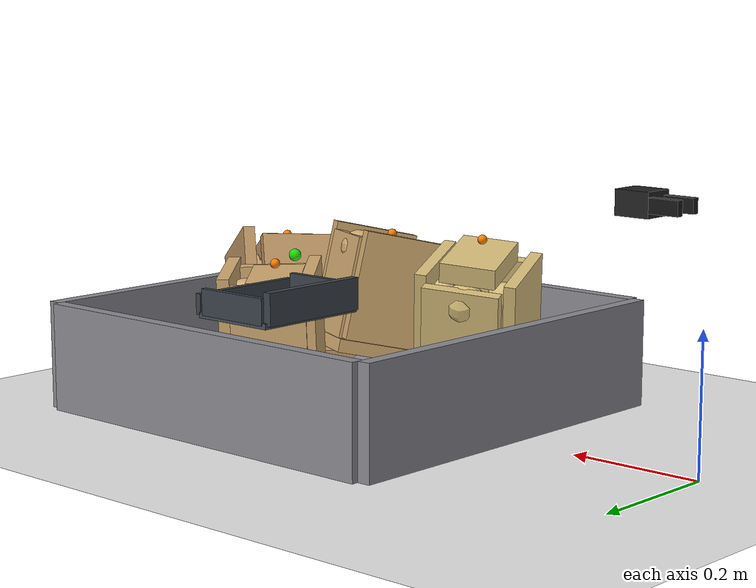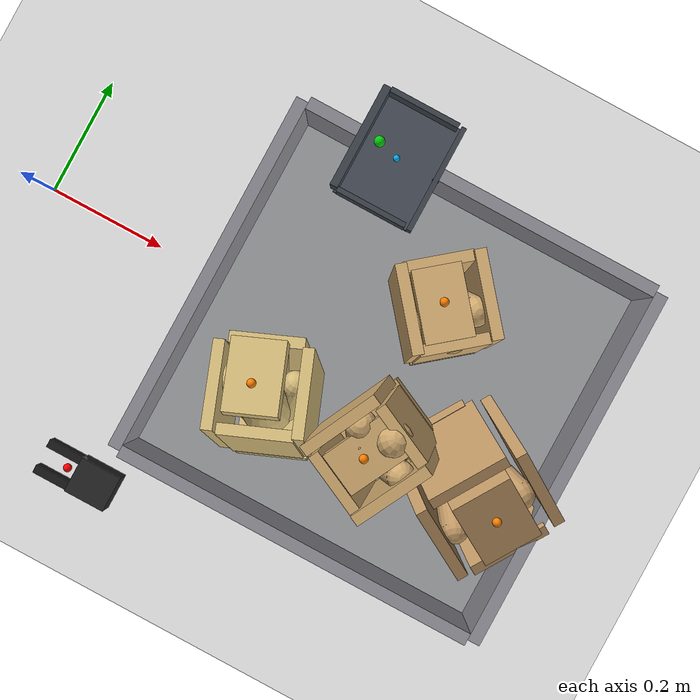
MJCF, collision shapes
<mujoco model="low_fill_top_collapsed_side_exposed_ep0_try1">
  <compiler angle="radian" coordinate="local" inertiafromgeom="true" meshdir="D:/Michael/2025/01.Research/01.Parceldetection/16.Pybullet/bullet3-master (1)/bullet3-master/examples/pybullet/examples/DeformableTest/Sackcodex2/object"/>
  <option timestep="0.002" gravity="0 0 -9.81" integrator="implicitfast" iterations="100" tolerance="1e-8"/>
  <size memory="768M" nconmax="12000"/>

  <visual>
    <global azimuth="128" elevation="-20"/>
    <headlight ambient="0.34 0.34 0.34" diffuse="0.78 0.78 0.78" specular="0.15 0.15 0.15"/>
    <rgba haze="0.11 0.13 0.18 1"/>
  </visual>

  <default>
    <geom condim="4" friction="1.15 0.03 0.01" margin="0.003" solimp="0.93 0.98 0.003" solref="0.012 1"/>
    <joint damping="1.2" armature="0.002"/>
    <position kp="2500" forcelimited="true" forcerange="-420 420"/>
    <motor ctrllimited="true"/>
  </default>

  <asset>
    <mesh name="sack_0_visual_mesh" file="sack.obj" scale="0.0692 0.0692 0.0712"/>
    <mesh name="sack_1_visual_mesh" file="sack.obj" scale="0.0675 0.0675 0.0680"/>
    <mesh name="sack_2_visual_mesh" file="sack3.obj" scale="0.0746 0.0746 0.0799"/>
    <mesh name="sack_3_visual_mesh" file="sack7.obj" scale="0.0686 0.0686 0.0757"/>
  </asset>

  <worldbody>
    <light name="key" pos="0.85 0.15 1.8" dir="-0.2 -0.1 -1" directional="true"/>
    <geom name="floor" type="plane" size="2 2 0.1" rgba="0.93 0.93 0.93 1"/>
    <geom name="work_pad" type="box" pos="0.62 0 0.012" size="0.30 0.30 0.012" rgba="0.60 0.61 0.62 1" friction="1.4 0.05 0.01"/>
    <geom name="corral_front" type="box" pos="0.93 0.00 0.08" size="0.010 0.30 0.08" rgba="0.55 0.55 0.58 0.22" friction="1.0 0.03 0.01"/>
    <geom name="corral_back" type="box" pos="0.31 0.00 0.08" size="0.010 0.30 0.08" rgba="0.55 0.55 0.58 0.18" friction="1.0 0.03 0.01"/>
    <geom name="corral_left" type="box" pos="0.62 0.30 0.08" size="0.30 0.010 0.08" rgba="0.55 0.55 0.58 0.14" friction="1.0 0.03 0.01"/>
    <geom name="corral_right" type="box" pos="0.62 -0.30 0.08" size="0.30 0.010 0.08" rgba="0.55 0.55 0.58 0.14" friction="1.0 0.03 0.01"/>
    <camera name="overview" pos="1.22 0.00 0.92" xyaxes="0 1 0 -0.46 0 0.88"/>

    <body name="gripper_mocap" mocap="true" pos="0.36 -0.33 0.30" quat="0.707107 0 -0.707107 0"/>
    <body name="scoop_mocap" mocap="true" pos="0.42 0.28 0.20" quat="1 0 0 0"/>

    <body name="gripper_ctrl_base" pos="0.36 -0.33 0.30">
      <inertial pos="0 0 0" mass="0.001" diaginertia="1e-6 1e-6 1e-6"/>
      <joint name="gripper_ctrl_x" type="slide" axis="1 0 0" limited="true" range="0.20 1.00"/>
      <body name="gripper_ctrl_y_body">
        <inertial pos="0 0 0" mass="0.001" diaginertia="1e-6 1e-6 1e-6"/>
        <joint name="gripper_ctrl_y" type="slide" axis="0 1 0" limited="true" range="-0.60 0.60"/>
        <body name="gripper_ctrl_z_body">
          <inertial pos="0 0 0" mass="0.001" diaginertia="1e-6 1e-6 1e-6"/>
          <joint name="gripper_ctrl_z" type="slide" axis="0 0 1" limited="true" range="0.04 0.70"/>
          <body name="gripper_ctrl_yaw_body">
            <inertial pos="0 0 0" mass="0.001" diaginertia="1e-6 1e-6 1e-6"/>
            <joint name="gripper_ctrl_yaw" type="hinge" axis="0 0 1" limited="true" range="-3.1416 3.1416"/>
            <body name="gripper_ctrl_pitch_body">
              <inertial pos="0 0 0" mass="0.001" diaginertia="1e-6 1e-6 1e-6"/>
              <joint name="gripper_ctrl_pitch" type="hinge" axis="0 1 0" limited="true" range="-3.1416 3.1416"/>
              <body name="gripper_ctrl_roll_body">
                <inertial pos="0 0 0" mass="0.001" diaginertia="1e-6 1e-6 1e-6"/>
                <joint name="gripper_ctrl_roll" type="hinge" axis="1 0 0" limited="true" range="-3.1416 3.1416"/>
              </body>
            </body>
          </body>
        </body>
      </body>
    </body>

    <body name="scoop_ctrl_base" pos="0.42 0.28 0.20">
      <inertial pos="0 0 0" mass="0.001" diaginertia="1e-6 1e-6 1e-6"/>
      <joint name="scoop_ctrl_x" type="slide" axis="1 0 0" limited="true" range="0.20 1.00"/>
      <body name="scoop_ctrl_y_body">
        <inertial pos="0 0 0" mass="0.001" diaginertia="1e-6 1e-6 1e-6"/>
        <joint name="scoop_ctrl_y" type="slide" axis="0 1 0" limited="true" range="-0.60 0.60"/>
        <body name="scoop_ctrl_z_body">
          <inertial pos="0 0 0" mass="0.001" diaginertia="1e-6 1e-6 1e-6"/>
          <joint name="scoop_ctrl_z" type="slide" axis="0 0 1" limited="true" range="0.04 0.70"/>
          <body name="scoop_ctrl_yaw_body">
            <inertial pos="0 0 0" mass="0.001" diaginertia="1e-6 1e-6 1e-6"/>
            <joint name="scoop_ctrl_yaw" type="hinge" axis="0 0 1" limited="true" range="-3.1416 3.1416"/>
            <body name="scoop_ctrl_pitch_body">
              <inertial pos="0 0 0" mass="0.001" diaginertia="1e-6 1e-6 1e-6"/>
              <joint name="scoop_ctrl_pitch" type="hinge" axis="0 1 0" limited="true" range="-3.1416 3.1416"/>
              <body name="scoop_ctrl_roll_body">
                <inertial pos="0 0 0" mass="0.001" diaginertia="1e-6 1e-6 1e-6"/>
                <joint name="scoop_ctrl_roll" type="hinge" axis="1 0 0" limited="true" range="-3.1416 3.1416"/>
              </body>
            </body>
          </body>
        </body>
      </body>
    </body>

    <body name="gripper_tool" pos="0.36 -0.33 0.30" quat="0.707107 0 -0.707107 0">
      <freejoint name="gripper_tool_free"/>
      <inertial pos="0 0 0.04" mass="0.08" diaginertia="0.0002 0.0002 0.0002"/>
      <geom name="gripper_palm" type="box" pos="0 0 0.030" size="0.020 0.026 0.030" rgba="0.14 0.14 0.14 1"/>
      <body name="left_finger_body" pos="0 0 0.072">
        <joint name="left_finger_slide" type="slide" axis="0 1 0" limited="true" range="0.010 0.040" damping="12"/>
        <geom name="left_finger_geom" type="box" pos="0 0.020 0" size="0.012 0.006 0.040" rgba="0.10 0.10 0.10 1" friction="2.2 0.05 0.01"/>
      </body>
      <body name="right_finger_body" pos="0 0 0.072">
        <joint name="right_finger_slide" type="slide" axis="0 -1 0" limited="true" range="0.010 0.040" damping="12"/>
        <geom name="right_finger_geom" type="box" pos="0 -0.020 0" size="0.012 0.006 0.040" rgba="0.10 0.10 0.10 1" friction="2.2 0.05 0.01"/>
      </body>
      <site name="gripper_pinch_site" pos="0 0 0.074" size="0.006" rgba="1 0 0 1"/>
    </body>

    <body name="scoop_tool" pos="0.42 0.28 0.20" quat="1 0 0 0">
      <freejoint name="scoop_tool_free"/>
      <inertial pos="0 0 0.02" mass="0.10" diaginertia="0.0003 0.0003 0.0003"/>
      <geom name="scoop_plate" type="box" pos="0.062 0 0" size="0.062 0.085 0.004" rgba="0.28 0.31 0.35 1" friction="1.7 0.05 0.01"/>
      <geom name="scoop_lip" type="box" pos="0.126 0 0.014" size="0.004 0.085 0.014" rgba="0.24 0.27 0.30 1" friction="1.7 0.05 0.01"/>
      <geom name="scoop_left_rail" type="box" pos="0.062 0.082 0.018" size="0.056 0.004 0.018" rgba="0.24 0.27 0.30 1"/>
      <geom name="scoop_right_rail" type="box" pos="0.062 -0.082 0.018" size="0.056 0.004 0.018" rgba="0.24 0.27 0.30 1"/>
      <geom name="scoop_backstop" type="box" pos="0.000 0 0.022" size="0.006 0.082 0.022" rgba="0.24 0.27 0.30 1"/>
      <site name="scoop_tip_site" pos="0.126 0 0.005" size="0.005" rgba="0 0 1 1"/>
      <site name="scoop_center_site" pos="0.060 0 0.020" size="0.005" rgba="0 0.7 1 1"/>
      <site name="score_overlay_site" pos="0.030 0 0.080" size="0.008" rgba="0 1 0 0.8"/>
    </body>

    <body name="sack_0" pos="0.6486 0.1237 0.1194" euler="-0.0752 -0.0223 -0.8880">
      <freejoint name="sack_0_free"/>

      <geom name="sack_0_visual" type="mesh" mesh="sack_0_visual_mesh" rgba="0.820 0.670 0.440 0.92" contype="0" conaffinity="0"/>
      <site name="sack_0_center_site" pos="0 0 0.000" size="0.006" rgba="0 1 0 1"/>
      <site name="sack_0_top_site" pos="0 -0.0060 0.1095" size="0.007" rgba="1 0.5 0 1"/>
      <site name="sack_0_side_site" pos="0.0000 -0.0479 0.018" size="0.007" rgba="1 0.8 0 1"/>

      <geom name="sack_0_core_geom" type="ellipsoid" pos="0 0 0.0057" size="0.0451 0.0350 0.0669" mass="0.6702" rgba="0.820 0.670 0.440 0.12" friction="1.0 0.03 0.01"/>
      <geom name="sack_0_core_front" type="capsule" fromto="-0.0200 0 -0.0200 0.0450 0 0.0600" size="0.0296" mass="0.1596" rgba="0.820 0.670 0.440 0.10"/>
      <geom name="sack_0_core_left" type="capsule" fromto="-0.008 0.0236 -0.010 0.018 0.0416 0.060" size="0.0240" mass="0.2872" rgba="0.820 0.670 0.440 0.10"/>
      <geom name="sack_0_core_right" type="capsule" fromto="-0.006 -0.0236 -0.008 0.020 -0.0436 0.054" size="0.0220" mass="0.2872" rgba="0.820 0.670 0.440 0.10"/>

      <body name="sack_0_bottom_support_proxy_body" pos="0 -0.0031 -0.0960">
        <joint name="sack_0_bottom_x" type="slide" axis="1 0 0" limited="true" range="-0.012 0.012" damping="18" stiffness="448.8"/>
        <joint name="sack_0_bottom_y" type="slide" axis="0 1 0" limited="true" range="-0.012 0.012" damping="18" stiffness="448.8"/>
        <joint name="sack_0_bottom_z" type="slide" axis="0 0 1" limited="true" range="-0.008 0.020" damping="24" stiffness="553.0"/>
        <geom name="sack_0_bottom_support_proxy" type="box" size="0.0726 0.0539 0.0100" mass="0.1276" rgba="0.820 0.670 0.440 0.34" friction="1.55 0.05 0.01"/>
      </body>

      <body name="sack_0_top_grasp_proxy_body" pos="0.0000 -0.0060 0.0795">
        <joint name="sack_0_top_x" type="slide" axis="1 0 0" limited="true" range="-0.018 0.018" damping="12" stiffness="172.3"/>
        <joint name="sack_0_top_y" type="slide" axis="0 1 0" limited="true" range="-0.018 0.018" damping="12" stiffness="172.3"/>
        <joint name="sack_0_top_z" type="slide" axis="0 0 1" limited="true" range="-0.040 0.010" damping="14" stiffness="126.3"/>
        <geom name="sack_0_top_grasp_proxy" type="box" size="0.0566 0.0379 0.0150" mass="0.0957" rgba="0.820 0.670 0.440 0.26" friction="2.2 0.05 0.01"/>
      </body>

      <body name="sack_0_left_side_proxy_body" pos="0 0.0615 0.010">
        <joint name="sack_0_left_side_slide" type="slide" axis="0 -1 0" limited="true" range="-0.028 0.016" damping="16" stiffness="221.6"/>
        <geom name="sack_0_left_side_proxy" type="box" size="0.0686 0.0090 0.0940" mass="0.0957" rgba="0.820 0.670 0.440 0.24"/>
      </body>

      <body name="sack_0_right_side_proxy_body" pos="0 -0.0575 0.010">
        <joint name="sack_0_right_side_slide" type="slide" axis="0 1 0" limited="true" range="-0.028 0.016" damping="16" stiffness="205.6"/>
        <geom name="sack_0_right_side_proxy" type="box" size="0.0686 0.0090 0.0940" mass="0.0957" rgba="0.820 0.670 0.440 0.24"/>
      </body>

      <body name="sack_0_front_proxy_body" pos="0.0626 0 0.000">
        <joint name="sack_0_front_slide" type="slide" axis="-1 0 0" limited="true" range="-0.022 0.012" damping="15" stiffness="214.4"/>
        <geom name="sack_0_front_support_proxy" type="box" size="0.0090 0.0539 0.0920" mass="0.0798" rgba="0.820 0.670 0.440 0.22"/>
      </body>

      <body name="sack_0_back_proxy_body" pos="-0.0626 0 0.000">
        <joint name="sack_0_back_slide" type="slide" axis="1 0 0" limited="true" range="-0.022 0.012" damping="15" stiffness="198.4"/>
        <geom name="sack_0_back_support_proxy" type="box" size="0.0090 0.0539 0.0920" mass="0.0798" rgba="0.820 0.670 0.440 0.22"/>
      </body>

      <body name="sack_0_shape_proxy_body" pos="0.0000 -0.0156 0.0437">
        <joint name="sack_0_bulge_y" type="slide" axis="0 1 0" limited="true" range="-0.020 0.020" damping="8" stiffness="107.4"/>
        <joint name="sack_0_bulge_z" type="slide" axis="0 0 1" limited="true" range="-0.014 0.028" damping="8" stiffness="105.6"/>
        <geom name="sack_0_shape_proxy" type="ellipsoid" size="0.0200 0.0161 0.0262" mass="0.0638" rgba="0.820 0.670 0.440 0.28"/>
      </body>
    </body>

    <body name="sack_1" pos="0.6593 -0.1107 0.1538" euler="0.2104 -0.0844 1.1319">
      <freejoint name="sack_1_free"/>

      <geom name="sack_1_visual" type="mesh" mesh="sack_1_visual_mesh" rgba="0.820 0.670 0.440 0.92" contype="0" conaffinity="0"/>
      <site name="sack_1_center_site" pos="0 0 0.000" size="0.006" rgba="0 1 0 1"/>
      <site name="sack_1_top_site" pos="0 0.0060 0.0920" size="0.007" rgba="1 0.5 0 1"/>
      <site name="sack_1_side_site" pos="0.0000 0.0462 0.018" size="0.007" rgba="1 0.8 0 1"/>

      <geom name="sack_1_core_geom" type="ellipsoid" pos="0 0 0.0057" size="0.0445 0.0342 0.0657" mass="0.6786" rgba="0.820 0.670 0.440 0.12" friction="1.0 0.03 0.01"/>
      <geom name="sack_1_core_front" type="capsule" fromto="-0.0200 0 -0.0200 0.0450 0 0.0600" size="0.0289" mass="0.1616" rgba="0.820 0.670 0.440 0.10"/>
      <geom name="sack_1_core_left" type="capsule" fromto="-0.008 0.0287 -0.010 0.018 0.0467 0.060" size="0.0241" mass="0.2908" rgba="0.820 0.670 0.440 0.10"/>
      <geom name="sack_1_core_right" type="capsule" fromto="-0.006 -0.0287 -0.008 0.020 -0.0487 0.054" size="0.0221" mass="0.2908" rgba="0.820 0.670 0.440 0.10"/>

      <body name="sack_1_bottom_support_proxy_body" pos="0 0.0102 -0.0843">
        <joint name="sack_1_bottom_x" type="slide" axis="1 0 0" limited="true" range="-0.012 0.012" damping="18" stiffness="426.7"/>
        <joint name="sack_1_bottom_y" type="slide" axis="0 1 0" limited="true" range="-0.012 0.012" damping="18" stiffness="426.7"/>
        <joint name="sack_1_bottom_z" type="slide" axis="0 0 1" limited="true" range="-0.008 0.020" damping="24" stiffness="526.0"/>
        <geom name="sack_1_bottom_support_proxy" type="box" size="0.0719 0.0522 0.0100" mass="0.1293" rgba="0.820 0.670 0.440 0.34" friction="1.55 0.05 0.01"/>
      </body>

      <body name="sack_1_top_grasp_proxy_body" pos="0.0000 0.0060 0.0620">
        <joint name="sack_1_top_x" type="slide" axis="1 0 0" limited="true" range="-0.018 0.018" damping="12" stiffness="163.7"/>
        <joint name="sack_1_top_y" type="slide" axis="0 1 0" limited="true" range="-0.018 0.018" damping="12" stiffness="163.7"/>
        <joint name="sack_1_top_z" type="slide" axis="0 0 1" limited="true" range="-0.040 0.010" damping="14" stiffness="118.9"/>
        <geom name="sack_1_top_grasp_proxy" type="box" size="0.0559 0.0362 0.0150" mass="0.0969" rgba="0.820 0.670 0.440 0.26" friction="2.2 0.05 0.01"/>
      </body>

      <body name="sack_1_left_side_proxy_body" pos="0 0.0649 0.010">
        <joint name="sack_1_left_side_slide" type="slide" axis="0 -1 0" limited="true" range="-0.028 0.016" damping="16" stiffness="206.7"/>
        <geom name="sack_1_left_side_proxy" type="box" size="0.0679 0.0090 0.0823" mass="0.0969" rgba="0.820 0.670 0.440 0.24"/>
      </body>

      <body name="sack_1_right_side_proxy_body" pos="0 -0.0609 0.010">
        <joint name="sack_1_right_side_slide" type="slide" axis="0 1 0" limited="true" range="-0.028 0.016" damping="16" stiffness="191.9"/>
        <geom name="sack_1_right_side_proxy" type="box" size="0.0679 0.0090 0.0823" mass="0.0969" rgba="0.820 0.670 0.440 0.24"/>
      </body>

      <body name="sack_1_front_proxy_body" pos="0.0619 0 0.000">
        <joint name="sack_1_front_slide" type="slide" axis="-1 0 0" limited="true" range="-0.022 0.012" damping="15" stiffness="203.4"/>
        <geom name="sack_1_front_support_proxy" type="box" size="0.0090 0.0522 0.0803" mass="0.0808" rgba="0.820 0.670 0.440 0.22"/>
      </body>

      <body name="sack_1_back_proxy_body" pos="-0.0619 0 0.000">
        <joint name="sack_1_back_slide" type="slide" axis="1 0 0" limited="true" range="-0.022 0.012" damping="15" stiffness="188.5"/>
        <geom name="sack_1_back_support_proxy" type="box" size="0.0090 0.0522 0.0803" mass="0.0808" rgba="0.820 0.670 0.440 0.22"/>
      </body>

      <body name="sack_1_shape_proxy_body" pos="0.0000 0.0207 0.0511">
        <joint name="sack_1_bulge_y" type="slide" axis="0 1 0" limited="true" range="-0.020 0.020" damping="8" stiffness="122.2"/>
        <joint name="sack_1_bulge_z" type="slide" axis="0 0 1" limited="true" range="-0.014 0.028" damping="8" stiffness="116.6"/>
        <geom name="sack_1_shape_proxy" type="ellipsoid" size="0.0201 0.0162 0.0263" mass="0.0646" rgba="0.820 0.670 0.440 0.28"/>
      </body>
    </body>

    <body name="sack_2" pos="0.8177 -0.0904 0.1207" euler="0.3136 0.3788 -0.5989">
      <freejoint name="sack_2_free"/>

      <geom name="sack_2_visual" type="mesh" mesh="sack_2_visual_mesh" rgba="0.760 0.600 0.400 0.92" contype="0" conaffinity="0"/>
      <site name="sack_2_center_site" pos="0 0 0.000" size="0.006" rgba="0 1 0 1"/>
      <site name="sack_2_top_site" pos="0 0.0060 0.1132" size="0.007" rgba="1 0.5 0 1"/>
      <site name="sack_2_side_site" pos="0.0140 0.0586 0.018" size="0.007" rgba="1 0.8 0 1"/>

      <geom name="sack_2_core_geom" type="ellipsoid" pos="0 0 0.0058" size="0.0452 0.0356 0.0797" mass="0.9569" rgba="0.760 0.600 0.400 0.12" friction="1.0 0.03 0.01"/>
      <geom name="sack_2_core_front" type="capsule" fromto="-0.0060 0 -0.0200 0.0590 0 0.0600" size="0.0310" mass="0.2278" rgba="0.760 0.600 0.400 0.10"/>
      <geom name="sack_2_core_left" type="capsule" fromto="-0.008 0.0363 -0.010 0.018 0.0543 0.060" size="0.0242" mass="0.4101" rgba="0.760 0.600 0.400 0.10"/>
      <geom name="sack_2_core_right" type="capsule" fromto="-0.006 -0.0363 -0.008 0.020 -0.0563 0.054" size="0.0222" mass="0.4101" rgba="0.760 0.600 0.400 0.10"/>

      <body name="sack_2_bottom_support_proxy_body" pos="0 -0.0133 -0.0915">
        <joint name="sack_2_bottom_x" type="slide" axis="1 0 0" limited="true" range="-0.012 0.012" damping="18" stiffness="490.5"/>
        <joint name="sack_2_bottom_y" type="slide" axis="0 1 0" limited="true" range="-0.012 0.012" damping="18" stiffness="490.5"/>
        <joint name="sack_2_bottom_z" type="slide" axis="0 0 1" limited="true" range="-0.008 0.020" damping="24" stiffness="604.0"/>
        <geom name="sack_2_bottom_support_proxy" type="box" size="0.0760 0.0646 0.0100" mass="0.1823" rgba="0.760 0.600 0.400 0.34" friction="1.55 0.05 0.01"/>
      </body>

      <body name="sack_2_top_grasp_proxy_body" pos="0.0140 0.0060 0.0832">
        <joint name="sack_2_top_x" type="slide" axis="1 0 0" limited="true" range="-0.018 0.018" damping="12" stiffness="188.5"/>
        <joint name="sack_2_top_y" type="slide" axis="0 1 0" limited="true" range="-0.018 0.018" damping="12" stiffness="188.5"/>
        <joint name="sack_2_top_z" type="slide" axis="0 0 1" limited="true" range="-0.040 0.010" damping="14" stiffness="140.2"/>
        <geom name="sack_2_top_grasp_proxy" type="box" size="0.0600 0.0486 0.0150" mass="0.1367" rgba="0.760 0.600 0.400 0.26" friction="2.2 0.05 0.01"/>
      </body>

      <body name="sack_2_left_side_proxy_body" pos="0 0.0850 0.010">
        <joint name="sack_2_left_side_slide" type="slide" axis="0 -1 0" limited="true" range="-0.028 0.016" damping="16" stiffness="249.8"/>
        <geom name="sack_2_left_side_proxy" type="box" size="0.0720 0.0090 0.0895" mass="0.1367" rgba="0.760 0.600 0.400 0.24"/>
      </body>

      <body name="sack_2_right_side_proxy_body" pos="0 -0.0810 0.010">
        <joint name="sack_2_right_side_slide" type="slide" axis="0 1 0" limited="true" range="-0.028 0.016" damping="16" stiffness="231.4"/>
        <geom name="sack_2_right_side_proxy" type="box" size="0.0720 0.0090 0.0895" mass="0.1367" rgba="0.760 0.600 0.400 0.24"/>
      </body>

      <body name="sack_2_front_proxy_body" pos="0.0800 0 0.000">
        <joint name="sack_2_front_slide" type="slide" axis="-1 0 0" limited="true" range="-0.022 0.012" damping="15" stiffness="235.3"/>
        <geom name="sack_2_front_support_proxy" type="box" size="0.0090 0.0646 0.0875" mass="0.1139" rgba="0.760 0.600 0.400 0.22"/>
      </body>

      <body name="sack_2_back_proxy_body" pos="-0.0660 0 0.000">
        <joint name="sack_2_back_slide" type="slide" axis="1 0 0" limited="true" range="-0.022 0.012" damping="15" stiffness="216.9"/>
        <geom name="sack_2_back_support_proxy" type="box" size="0.0090 0.0646 0.0875" mass="0.1139" rgba="0.760 0.600 0.400 0.22"/>
      </body>

      <body name="sack_2_shape_proxy_body" pos="0.0084 0.0283 0.0298">
        <joint name="sack_2_bulge_y" type="slide" axis="0 1 0" limited="true" range="-0.020 0.020" damping="8" stiffness="79.6"/>
        <joint name="sack_2_bulge_z" type="slide" axis="0 0 1" limited="true" range="-0.014 0.028" damping="8" stiffness="84.7"/>
        <geom name="sack_2_shape_proxy" type="ellipsoid" size="0.0202 0.0163 0.0261" mass="0.0911" rgba="0.760 0.600 0.400 0.28"/>
      </body>
    </body>

    <body name="sack_3" pos="0.4799 -0.1297 0.1209" euler="-0.1775 -0.1585 1.9431">
      <freejoint name="sack_3_free"/>

      <geom name="sack_3_visual" type="mesh" mesh="sack_3_visual_mesh" rgba="0.840 0.740 0.480 0.92" contype="0" conaffinity="0"/>
      <site name="sack_3_center_site" pos="0 0 0.000" size="0.006" rgba="0 1 0 1"/>
      <site name="sack_3_top_site" pos="0 0.0060 0.1398" size="0.007" rgba="1 0.5 0 1"/>
      <site name="sack_3_side_site" pos="0.0140 0.0519 0.018" size="0.007" rgba="1 0.8 0 1"/>

      <geom name="sack_3_core_geom" type="ellipsoid" pos="0 0 0.0059" size="0.0511 0.0434 0.0915" mass="1.0038" rgba="0.840 0.740 0.480 0.12" friction="1.0 0.03 0.01"/>
      <geom name="sack_3_core_front" type="capsule" fromto="-0.0060 0 -0.0200 0.0590 0 0.0600" size="0.0321" mass="0.2390" rgba="0.840 0.740 0.480 0.10"/>
      <geom name="sack_3_core_left" type="capsule" fromto="-0.008 0.0274 -0.010 0.018 0.0454 0.060" size="0.0241" mass="0.4302" rgba="0.840 0.740 0.480 0.10"/>
      <geom name="sack_3_core_right" type="capsule" fromto="-0.006 -0.0274 -0.008 0.020 -0.0474 0.054" size="0.0221" mass="0.4302" rgba="0.840 0.740 0.480 0.10"/>

      <body name="sack_3_bottom_support_proxy_body" pos="0 -0.0040 -0.0932">
        <joint name="sack_3_bottom_x" type="slide" axis="1 0 0" limited="true" range="-0.012 0.012" damping="18" stiffness="524.2"/>
        <joint name="sack_3_bottom_y" type="slide" axis="0 1 0" limited="true" range="-0.012 0.012" damping="18" stiffness="524.2"/>
        <joint name="sack_3_bottom_z" type="slide" axis="0 0 1" limited="true" range="-0.008 0.020" damping="24" stiffness="645.2"/>
        <geom name="sack_3_bottom_support_proxy" type="box" size="0.0729 0.0579 0.0100" mass="0.1912" rgba="0.840 0.740 0.480 0.34" friction="1.55 0.05 0.01"/>
      </body>

      <body name="sack_3_top_grasp_proxy_body" pos="0.0140 0.0060 0.1098">
        <joint name="sack_3_top_x" type="slide" axis="1 0 0" limited="true" range="-0.018 0.018" damping="12" stiffness="201.6"/>
        <joint name="sack_3_top_y" type="slide" axis="0 1 0" limited="true" range="-0.018 0.018" damping="12" stiffness="201.6"/>
        <joint name="sack_3_top_z" type="slide" axis="0 0 1" limited="true" range="-0.040 0.010" damping="14" stiffness="151.4"/>
        <geom name="sack_3_top_grasp_proxy" type="box" size="0.0569 0.0419 0.0150" mass="0.1434" rgba="0.840 0.740 0.480 0.26" friction="2.2 0.05 0.01"/>
      </body>

      <body name="sack_3_left_side_proxy_body" pos="0 0.0693 0.010">
        <joint name="sack_3_left_side_slide" type="slide" axis="0 -1 0" limited="true" range="-0.028 0.016" damping="16" stiffness="272.6"/>
        <geom name="sack_3_left_side_proxy" type="box" size="0.0689 0.0090 0.0912" mass="0.1434" rgba="0.840 0.740 0.480 0.24"/>
      </body>

      <body name="sack_3_right_side_proxy_body" pos="0 -0.0653 0.010">
        <joint name="sack_3_right_side_slide" type="slide" axis="0 1 0" limited="true" range="-0.028 0.016" damping="16" stiffness="252.3"/>
        <geom name="sack_3_right_side_proxy" type="box" size="0.0689 0.0090 0.0912" mass="0.1434" rgba="0.840 0.740 0.480 0.24"/>
      </body>

      <body name="sack_3_front_proxy_body" pos="0.0769 0 0.000">
        <joint name="sack_3_front_slide" type="slide" axis="-1 0 0" limited="true" range="-0.022 0.012" damping="15" stiffness="252.1"/>
        <geom name="sack_3_front_support_proxy" type="box" size="0.0090 0.0579 0.0892" mass="0.1195" rgba="0.840 0.740 0.480 0.22"/>
      </body>

      <body name="sack_3_back_proxy_body" pos="-0.0629 0 0.000">
        <joint name="sack_3_back_slide" type="slide" axis="1 0 0" limited="true" range="-0.022 0.012" damping="15" stiffness="231.9"/>
        <geom name="sack_3_back_support_proxy" type="box" size="0.0090 0.0579 0.0892" mass="0.1195" rgba="0.840 0.740 0.480 0.22"/>
      </body>

      <body name="sack_3_shape_proxy_body" pos="0.0084 0.0194 0.0186">
        <joint name="sack_3_bulge_y" type="slide" axis="0 1 0" limited="true" range="-0.020 0.020" damping="8" stiffness="60.0"/>
        <joint name="sack_3_bulge_z" type="slide" axis="0 0 1" limited="true" range="-0.014 0.028" damping="8" stiffness="70.0"/>
        <geom name="sack_3_shape_proxy" type="ellipsoid" size="0.0201 0.0161 0.0261" mass="0.0956" rgba="0.840 0.740 0.480 0.28"/>
      </body>
    </body>
  </worldbody>

  <equality>
    <weld name="gripper_follow" body1="gripper_mocap" body2="gripper_tool" torquescale="400" solref="0.002 1" solimp="0.99 0.999 0.0001"/>
    <weld name="scoop_follow" body1="scoop_mocap" body2="scoop_tool" torquescale="500" solref="0.002 1" solimp="0.99 0.999 0.0001"/>
  </equality>

  <actuator>
    <position name="gripper_ctrl_x_act" joint="gripper_ctrl_x" ctrlrange="0.20 1.00" kp="3500" forcerange="-300 300"/>
    <position name="gripper_ctrl_y_act" joint="gripper_ctrl_y" ctrlrange="-0.60 0.60" kp="3500" forcerange="-300 300"/>
    <position name="gripper_ctrl_z_act" joint="gripper_ctrl_z" ctrlrange="0.04 0.70" kp="3500" forcerange="-300 300"/>
    <position name="gripper_ctrl_yaw_act" joint="gripper_ctrl_yaw" ctrlrange="-3.1416 3.1416" kp="1800" forcerange="-250 250"/>
    <position name="gripper_ctrl_pitch_act" joint="gripper_ctrl_pitch" ctrlrange="-3.1416 3.1416" kp="1800" forcerange="-250 250"/>
    <position name="gripper_ctrl_roll_act" joint="gripper_ctrl_roll" ctrlrange="-3.1416 3.1416" kp="1800" forcerange="-250 250"/>
    <position name="scoop_ctrl_x_act" joint="scoop_ctrl_x" ctrlrange="0.20 1.00" kp="3500" forcerange="-300 300"/>
    <position name="scoop_ctrl_y_act" joint="scoop_ctrl_y" ctrlrange="-0.60 0.60" kp="3500" forcerange="-300 300"/>
    <position name="scoop_ctrl_z_act" joint="scoop_ctrl_z" ctrlrange="0.04 0.70" kp="3500" forcerange="-300 300"/>
    <position name="scoop_ctrl_yaw_act" joint="scoop_ctrl_yaw" ctrlrange="-3.1416 3.1416" kp="1800" forcerange="-250 250"/>
    <position name="scoop_ctrl_pitch_act" joint="scoop_ctrl_pitch" ctrlrange="-3.1416 3.1416" kp="1800" forcerange="-250 250"/>
    <position name="scoop_ctrl_roll_act" joint="scoop_ctrl_roll" ctrlrange="-3.1416 3.1416" kp="1800" forcerange="-250 250"/>
    <position name="left_finger_act" joint="left_finger_slide" ctrlrange="0.010 0.040" kp="2800" forcerange="-220 220"/>
    <position name="right_finger_act" joint="right_finger_slide" ctrlrange="0.010 0.040" kp="2800" forcerange="-220 220"/>
  </actuator>

  <contact>
    <exclude body1="sack_0_top_grasp_proxy_body" body2="sack_0_left_side_proxy_body"/>
    <exclude body1="sack_0_top_grasp_proxy_body" body2="sack_0_right_side_proxy_body"/>
    <exclude body1="sack_1_top_grasp_proxy_body" body2="sack_1_left_side_proxy_body"/>
    <exclude body1="sack_1_top_grasp_proxy_body" body2="sack_1_right_side_proxy_body"/>
    <exclude body1="sack_2_top_grasp_proxy_body" body2="sack_2_left_side_proxy_body"/>
    <exclude body1="sack_2_top_grasp_proxy_body" body2="sack_2_right_side_proxy_body"/>
    <exclude body1="sack_3_top_grasp_proxy_body" body2="sack_3_left_side_proxy_body"/>
    <exclude body1="sack_3_top_grasp_proxy_body" body2="sack_3_right_side_proxy_body"/>
  </contact>
</mujoco>
